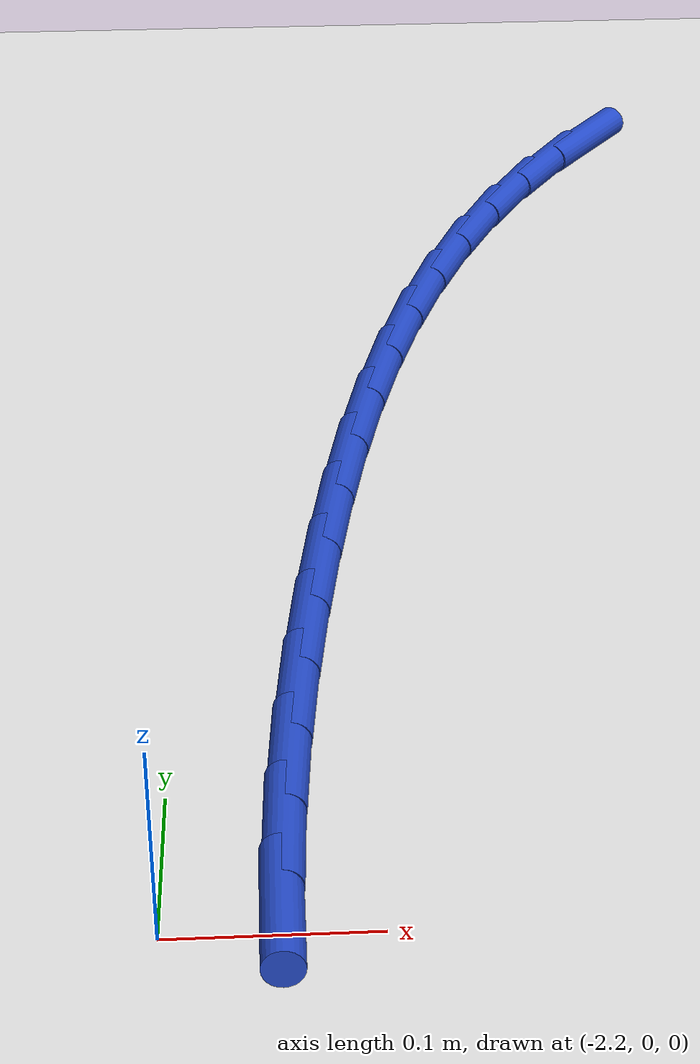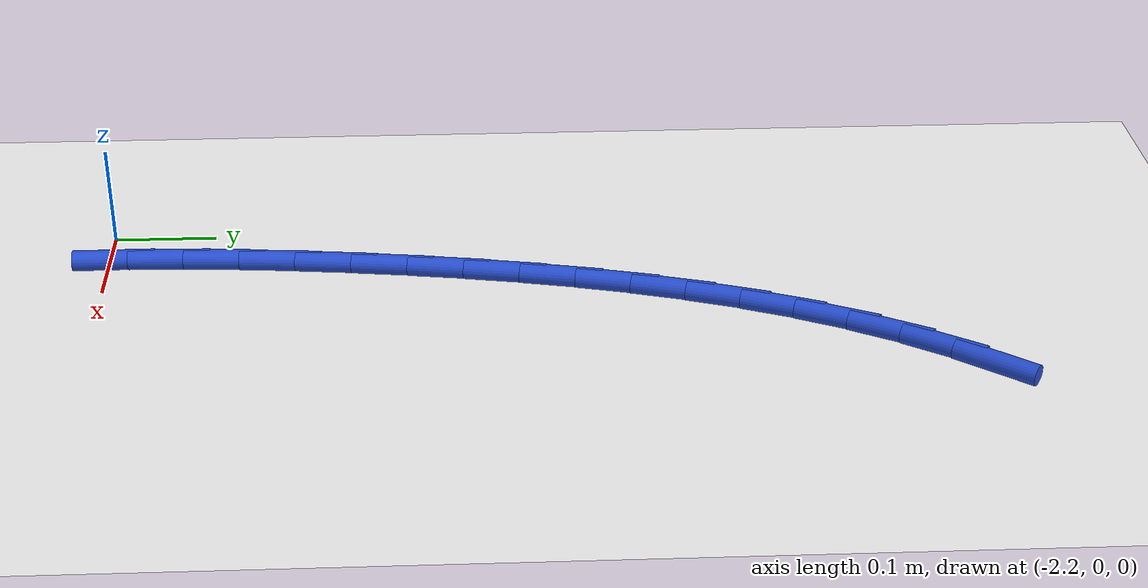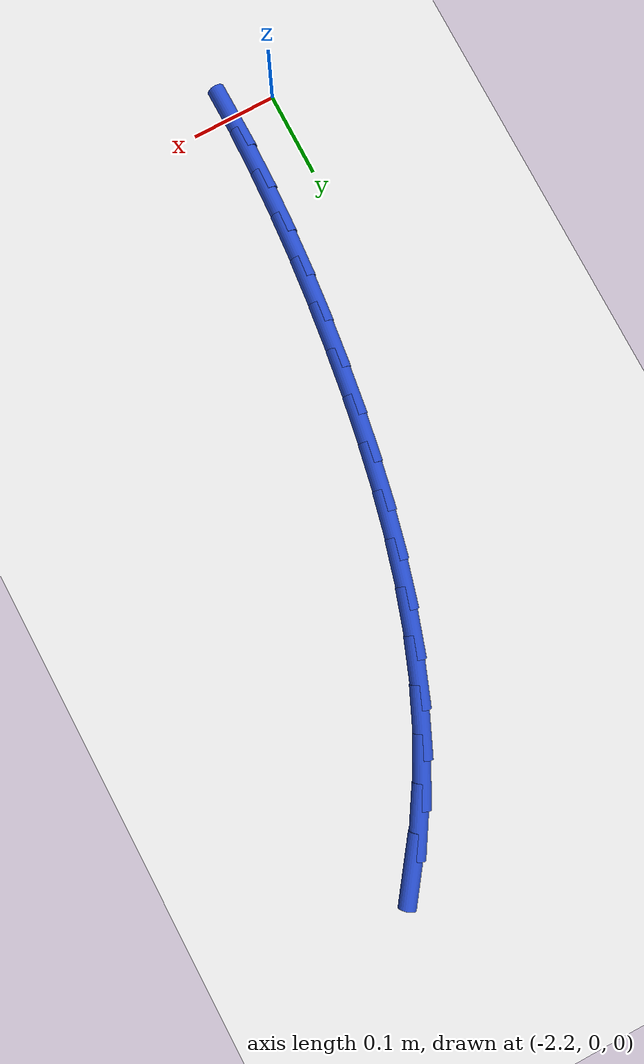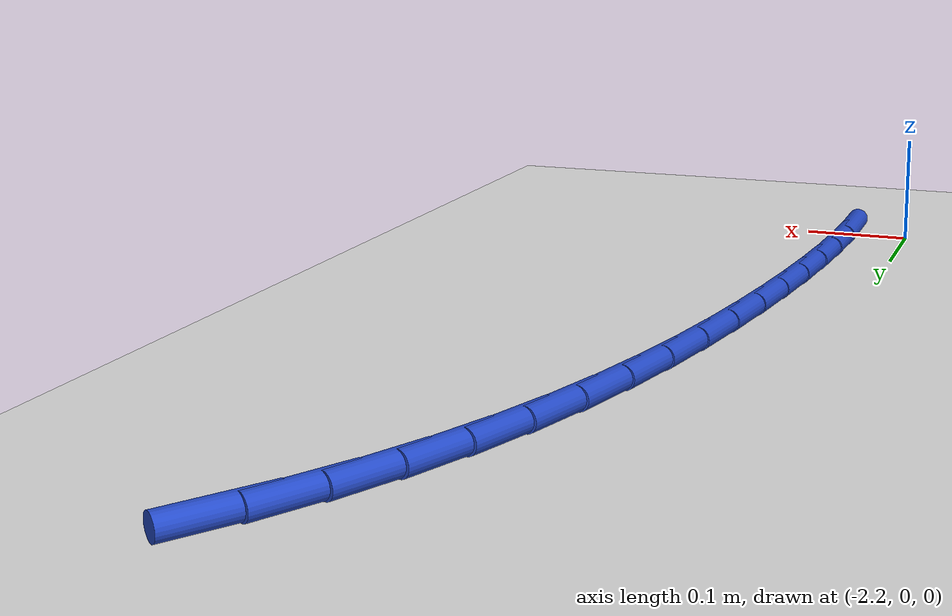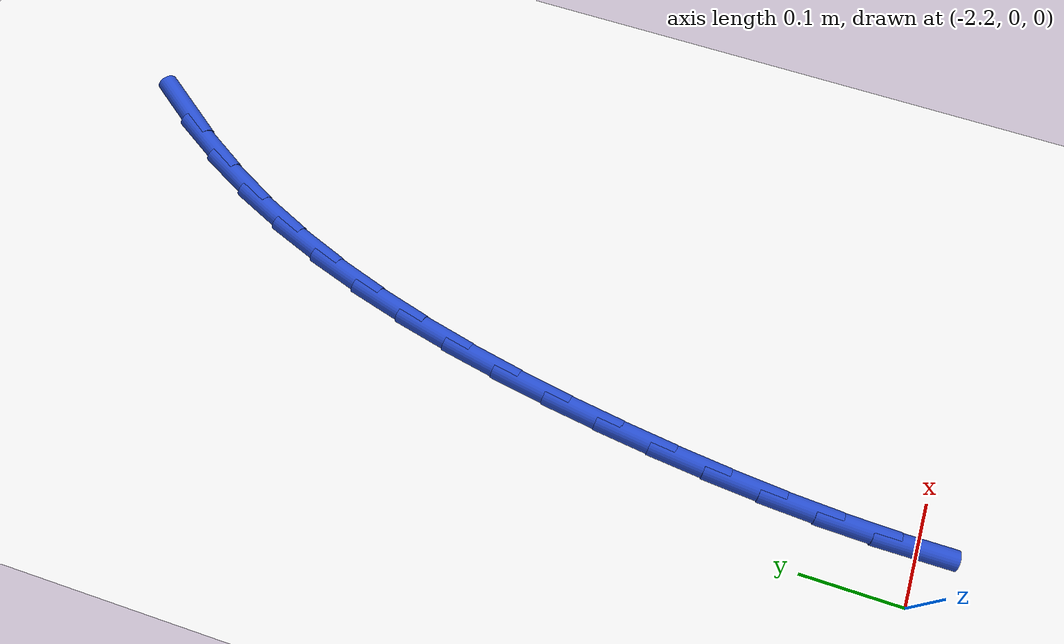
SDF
<sdf version="1.6">
 <world name="default">
  <model name="ground_plane">
   <static>1</static>
   <link name="link">
    <collision name="collision">
     <geometry><plane><normal>0 0 1</normal><size>100 100</size></plane></geometry>
     <surface><friction><ode><mu>100</mu><mu2>50</mu2></ode></friction></surface>
    </collision>
    <visual name="visual">
     <cast_shadows>0</cast_shadows>
     <geometry><plane><normal>0 0 1</normal><size>100 100</size></plane></geometry>
     <material>
      <script><uri>file://media/materials/scripts/gazebo.material</uri><name>Gazebo/WhiteGlow</name></script>
     </material>
    </visual>
   </link>
  </model>
  <model name="line">
   <link name="link_49">
    <pose>-1.9323582886268011 0.8277404132959044 0.01 0 1.57 0.9367854974306531</pose>
    <collision name="collision">
     <geometry><cylinder><radius>0.01</radius><length>0.08</length></cylinder></geometry>
    </collision>
    <visual name="visual">
     <material>
      <script><name>Gazebo/Blue</name><uri>file://media/materials/scripts/gazebo.material</uri></script>
     </material>
     <geometry><cylinder><radius>0.01</radius><length>0.08</length></cylinder></geometry>
    </visual>
   </link>
   <link name="link_50">
    <pose>-1.962825308561034 0.78630423386691 0.01 0 1.57 1.0147512549799496</pose>
    <collision name="collision">
     <geometry><cylinder><radius>0.01</radius><length>0.08</length></cylinder></geometry>
    </collision>
    <visual name="visual">
     <material>
      <script><name>Gazebo/Blue</name><uri>file://media/materials/scripts/gazebo.material</uri></script>
     </material>
     <geometry><cylinder><radius>0.01</radius><length>0.08</length></cylinder></geometry>
    </visual>
   </link>
   <link name="link_51">
    <pose>-1.9900690120944677 0.7424655611854153 0.01 0 1.57 1.085957567261448</pose>
    <collision name="collision">
     <geometry><cylinder><radius>0.01</radius><length>0.08</length></cylinder></geometry>
    </collision>
    <visual name="visual">
     <material>
      <script><name>Gazebo/Blue</name><uri>file://media/materials/scripts/gazebo.material</uri></script>
     </material>
     <geometry><cylinder><radius>0.01</radius><length>0.08</length></cylinder></geometry>
    </visual>
   </link>
   <link name="link_52">
    <pose>-2.0143026952589493 0.6964618465586287 0.01 0 1.57 1.1502371739270587</pose>
    <collision name="collision">
     <geometry><cylinder><radius>0.01</radius><length>0.08</length></cylinder></geometry>
    </collision>
    <visual name="visual">
     <material>
      <script><name>Gazebo/Blue</name><uri>file://media/materials/scripts/gazebo.material</uri></script>
     </material>
     <geometry><cylinder><radius>0.01</radius><length>0.08</length></cylinder></geometry>
    </visual>
   </link>
   <link name="link_53">
    <pose>-2.035739654086328 0.6485305412937573 0.01 0 1.57 1.2076954274062595</pose>
    <collision name="collision">
     <geometry><cylinder><radius>0.01</radius><length>0.08</length></cylinder></geometry>
    </collision>
    <visual name="visual">
     <material>
      <script><name>Gazebo/Blue</name><uri>file://media/materials/scripts/gazebo.material</uri></script>
     </material>
     <geometry><cylinder><radius>0.01</radius><length>0.08</length></cylinder></geometry>
    </visual>
   </link>
   <link name="link_54">
    <pose>-2.0545931846084495 0.5989090966980075 0.01 0 1.57 1.2586146165164152</pose>
    <collision name="collision">
     <geometry><cylinder><radius>0.01</radius><length>0.08</length></cylinder></geometry>
    </collision>
    <visual name="visual">
     <material>
      <script><name>Gazebo/Blue</name><uri>file://media/materials/scripts/gazebo.material</uri></script>
     </material>
     <geometry><cylinder><radius>0.01</radius><length>0.08</length></cylinder></geometry>
    </visual>
   </link>
   <link name="link_55">
    <pose>-2.071076582857161 0.5478349640785873 0.01 0 1.57 1.3033729457554772</pose>
    <collision name="collision">
     <geometry><cylinder><radius>0.01</radius><length>0.08</length></cylinder></geometry>
    </collision>
    <visual name="visual">
     <material>
      <script><name>Gazebo/Blue</name><uri>file://media/materials/scripts/gazebo.material</uri></script>
     </material>
     <geometry><cylinder><radius>0.01</radius><length>0.08</length></cylinder></geometry>
    </visual>
   </link>
   <link name="link_56">
    <pose>-2.0854031448643107 0.4955455947427042 0.01 0 1.57 1.342383193558133</pose>
    <collision name="collision">
     <geometry><cylinder><radius>0.01</radius><length>0.08</length></cylinder></geometry>
    </collision>
    <visual name="visual">
     <material>
      <script><name>Gazebo/Blue</name><uri>file://media/materials/scripts/gazebo.material</uri></script>
     </material>
     <geometry><cylinder><radius>0.01</radius><length>0.08</length></cylinder></geometry>
    </visual>
   </link>
   <link name="link_57">
    <pose>-2.097786166661745 0.4422784399975651 0.01 0 1.57 1.3760499472580074</pose>
    <collision name="collision">
     <geometry><cylinder><radius>0.01</radius><length>0.08</length></cylinder></geometry>
    </collision>
    <visual name="visual">
     <material>
      <script><name>Gazebo/Blue</name><uri>file://media/materials/scripts/gazebo.material</uri></script>
     </material>
     <geometry><cylinder><radius>0.01</radius><length>0.08</length></cylinder></geometry>
    </visual>
   </link>
   <link name="link_58">
    <pose>-2.108438944281311 0.3882709511503769 0.01 0 1.57 1.4047416206050918</pose>
    <collision name="collision">
     <geometry><cylinder><radius>0.01</radius><length>0.08</length></cylinder></geometry>
    </collision>
    <visual name="visual">
     <material>
      <script><name>Gazebo/Blue</name><uri>file://media/materials/scripts/gazebo.material</uri></script>
     </material>
     <geometry><cylinder><radius>0.01</radius><length>0.08</length></cylinder></geometry>
    </visual>
   </link>
   <link name="link_59">
    <pose>-2.1175747737548587 0.33376057950834753 0.01 0 1.57 1.4287729162331229</pose>
    <collision name="collision">
     <geometry><cylinder><radius>0.01</radius><length>0.08</length></cylinder></geometry>
    </collision>
    <visual name="visual">
     <material>
      <script><name>Gazebo/Blue</name><uri>file://media/materials/scripts/gazebo.material</uri></script>
     </material>
     <geometry><cylinder><radius>0.01</radius><length>0.08</length></cylinder></geometry>
    </visual>
   </link>
   <link name="link_60">
    <pose>-2.125406951114231 0.2789847763786842 0.01 0 1.57 1.4492878236056537</pose>
    <collision name="collision">
     <geometry><cylinder><radius>0.01</radius><length>0.08</length></cylinder></geometry>
    </collision>
    <visual name="visual">
     <material>
      <script><name>Gazebo/Blue</name><uri>file://media/materials/scripts/gazebo.material</uri></script>
     </material>
     <geometry><cylinder><radius>0.01</radius><length>0.08</length></cylinder></geometry>
    </visual>
   </link>
   <link name="link_61">
    <pose>-2.1321016483946975 0.22415966466014217 0.01 0 1.57 1.470757129905485</pose>
    <collision name="collision">
     <geometry><cylinder><radius>0.01</radius><length>0.08</length></cylinder></geometry>
    </collision>
    <visual name="visual">
     <material>
      <script><name>Gazebo/Blue</name><uri>file://media/materials/scripts/gazebo.material</uri></script>
     </material>
     <geometry><cylinder><radius>0.01</radius><length>0.08</length></cylinder></geometry>
    </visual>
   </link>
   <link name="link_62">
    <pose>-2.137598238158137 0.16939871738821952 0.01 0 1.57 1.4945956407649976</pose>
    <collision name="collision">
     <geometry><cylinder><radius>0.01</radius><length>0.08</length></cylinder></geometry>
    </collision>
    <visual name="visual">
     <material>
      <script><name>Gazebo/Blue</name><uri>file://media/materials/scripts/gazebo.material</uri></script>
     </material>
     <geometry><cylinder><radius>0.01</radius><length>0.08</length></cylinder></geometry>
    </visual>
   </link>
   <link name="link_63">
    <pose>-2.141767947703329 0.1147845649256603 0.01 0 1.57 1.5209331856254924</pose>
    <collision name="collision">
     <geometry><cylinder><radius>0.01</radius><length>0.08</length></cylinder></geometry>
    </collision>
    <visual name="visual">
     <material>
      <script><name>Gazebo/Blue</name><uri>file://media/materials/scripts/gazebo.material</uri></script>
     </material>
     <geometry><cylinder><radius>0.01</radius><length>0.08</length></cylinder></geometry>
    </visual>
   </link>
   <link name="link_64">
    <pose>-2.144481991048687 0.06039983162448973 0.01 0 1.57 1.5499091304521941</pose>
    <collision name="collision">
     <geometry><cylinder><radius>0.01</radius><length>0.08</length></cylinder></geometry>
    </collision>
    <visual name="visual">
     <material>
      <script><name>Gazebo/Blue</name><uri>file://media/materials/scripts/gazebo.material</uri></script>
     </material>
     <geometry><cylinder><radius>0.01</radius><length>0.08</length></cylinder></geometry>
    </visual>
   </link>
   <link name="link_65">
    <pose>-2.145611582212624 0.006327141836732216 0.01 0 1.57 -1.5599236459594084</pose>
    <collision name="collision">
     <geometry><cylinder><radius>0.01</radius><length>0.08</length></cylinder></geometry>
    </collision>
    <visual name="visual">
     <material>
      <script><name>Gazebo/Blue</name><uri>file://media/materials/scripts/gazebo.material</uri></script>
     </material>
     <geometry><cylinder><radius>0.01</radius><length>0.08</length></cylinder></geometry>
    </visual>
   </link>
  </model>
 </world>
</sdf>
